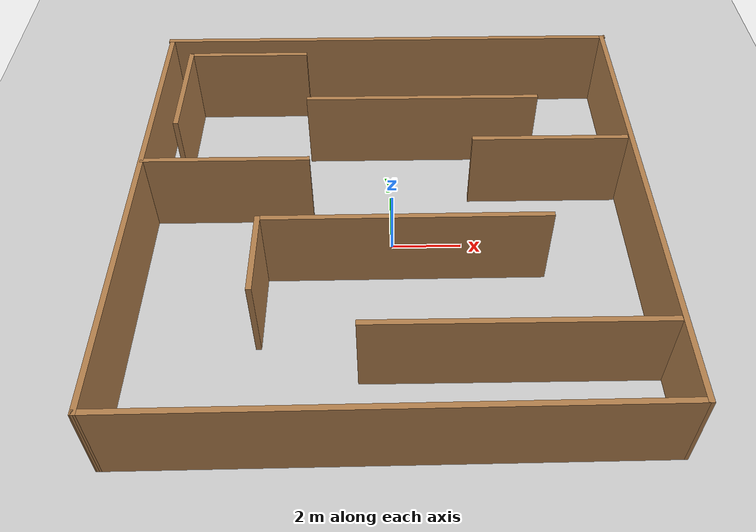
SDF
<sdf version="1.7">
 <world name="default">
  <light name="sun" type="directional">
   <pose>0 0 10 0 -0 0</pose>
   <diffuse>0.8 0.8 0.8 1</diffuse>
   <specular>0.2 0.2 0.2 1</specular>
   <attenuation>
    <range>1000</range>
    <constant>0.9</constant>
    <linear>0.01</linear>
    <quadratic>0.001</quadratic>
   </attenuation>
   <direction>-0.5 0.1 -0.9</direction>
   <spot><inner_angle>0</inner_angle><outer_angle>0</outer_angle><falloff>0</falloff></spot>
  </light>
  <model name="ground_plane">
   <static>1</static>
   <link name="link">
    <collision name="collision">
     <geometry><plane><normal>0 0 1</normal><size>100 100</size></plane></geometry>
     <surface><friction><ode><mu>100</mu><mu2>50</mu2></ode></friction></surface>
    </collision>
    <visual name="visual">
     <cast_shadows>0</cast_shadows>
     <geometry><plane><normal>0 0 1</normal><size>100 100</size></plane></geometry>
     <material>
      <script><uri>file://media/materials/scripts/gazebo.material</uri><name>Gazebo/Grey</name></script>
     </material>
    </visual>
   </link>
  </model>
  <gravity>0 0 -9.8</gravity>
  <magnetic_field>6e-06 2.3e-05 -4.2e-05</magnetic_field>
  <atmosphere type="adiabatic"/>
  <physics type="ode">
   <max_step_size>0.001</max_step_size>
   <real_time_factor>1</real_time_factor>
   <real_time_update_rate>1000</real_time_update_rate>
  </physics>
  <scene><ambient>0.4 0.4 0.4 1</ambient><background>0.7 0.7 0.7 1</background><shadows>1</shadows></scene>
  <audio><device>default</device></audio>
  <spherical_coordinates>
   <surface_model>EARTH_WGS84</surface_model>
   <latitude_deg>0</latitude_deg>
   <longitude_deg>0</longitude_deg>
   <elevation>0</elevation>
   <heading_deg>0</heading_deg>
  </spherical_coordinates>
  <model name="proj2">
   <pose>-0.031125 -0.022629 0 0 -0 0</pose>
   <link name="Wall_0">
    <collision name="Wall_0_Collision">
     <geometry><box><size>14.0306 0.15 2.5</size></box></geometry>
     <pose>0 0 1.25 0 -0 0</pose>
    </collision>
    <visual name="Wall_0_Visual">
     <pose>0 0 1.25 0 -0 0</pose>
     <geometry><box><size>14.0306 0.15 2.5</size></box></geometry>
     <material>
      <script><uri>file://media/materials/scripts/gazebo.material</uri><name>Gazebo/Wood</name></script>
      <ambient>1 1 1 1</ambient>
     </material>
     <meta><layer>0</layer></meta>
    </visual>
    <pose>-7.01292 -0.015459 0 0 -0 -1.5708</pose>
   </link>
   <link name="Wall_11">
    <collision name="Wall_11_Collision">
     <geometry><box><size>4.5 0.15 2.5</size></box></geometry>
     <pose>0 0 1.25 0 -0 0</pose>
    </collision>
    <visual name="Wall_11_Visual">
     <pose>0 0 1.25 0 -0 0</pose>
     <geometry><box><size>4.5 0.15 2.5</size></box></geometry>
     <material>
      <script><uri>file://media/materials/scripts/gazebo.material</uri><name>Gazebo/Wood</name></script>
      <ambient>1 1 1 1</ambient>
     </material>
     <meta><layer>0</layer></meta>
    </visual>
    <pose>4.62264 1.9441 0 0 -0 0</pose>
   </link>
   <link name="Wall_13">
    <collision name="Wall_13_Collision">
     <geometry><box><size>4.75 0.15 2.5</size></box></geometry>
     <pose>0 0 1.25 0 -0 0</pose>
    </collision>
    <visual name="Wall_13_Visual">
     <pose>0 0 1.25 0 -0 0</pose>
     <geometry><box><size>4.75 0.15 2.5</size></box></geometry>
     <material>
      <script><uri>file://media/materials/scripts/gazebo.material</uri><name>Gazebo/Wood</name></script>
      <ambient>1 1 1 1</ambient>
     </material>
     <meta><layer>0</layer></meta>
    </visual>
    <pose>-4.65833 1.15325 0 0 -0 3.14159</pose>
   </link>
   <link name="Wall_15">
    <collision name="Wall_15_Collision">
     <geometry><box><size>2.5 0.15 2.5</size></box></geometry>
     <pose>0 0 1.25 0 -0 0</pose>
    </collision>
    <visual name="Wall_15_Visual">
     <pose>0 0 1.25 0 -0 0</pose>
     <geometry><box><size>2.5 0.15 2.5</size></box></geometry>
     <material>
      <script><uri>file://media/materials/scripts/gazebo.material</uri><name>Gazebo/Wood</name></script>
      <ambient>1 1 1 1</ambient>
     </material>
     <meta><layer>0</layer></meta>
    </visual>
    <pose>-3.54461 -2.33348 0 0 -0 -1.5708</pose>
   </link>
   <link name="Wall_17">
    <collision name="Wall_17_Collision">
     <geometry><box><size>7.93694 0.15 2.5</size></box></geometry>
     <pose>0 0 1.25 0 -0 0</pose>
    </collision>
    <visual name="Wall_17_Visual">
     <pose>0 0 1.25 0 -0 0</pose>
     <geometry><box><size>7.93694 0.15 2.5</size></box></geometry>
     <material>
      <script><uri>file://media/materials/scripts/gazebo.material</uri><name>Gazebo/Wood</name></script>
      <ambient>1 1 1 1</ambient>
     </material>
     <meta><layer>0</layer></meta>
    </visual>
    <pose>0.348829 -1.14327 0 0 -0 -3.13769</pose>
   </link>
   <link name="Wall_19">
    <collision name="Wall_19_Collision">
     <geometry><box><size>7.75 0.15 2.5</size></box></geometry>
     <pose>0 0 1.25 0 -0 0</pose>
    </collision>
    <visual name="Wall_19_Visual">
     <pose>0 0 1.25 0 -0 0</pose>
     <geometry><box><size>7.75 0.15 2.5</size></box></geometry>
     <material>
      <script><uri>file://media/materials/scripts/gazebo.material</uri><name>Gazebo/Wood</name></script>
      <ambient>1 1 1 1</ambient>
     </material>
     <meta><layer>0</layer></meta>
    </visual>
    <pose>2.96255 -4.62608 0 0 -0 0</pose>
   </link>
   <link name="Wall_22">
    <collision name="Wall_22_Collision">
     <geometry><box><size>3.5 0.15 2.5</size></box></geometry>
     <pose>0 0 1.25 0 -0 0</pose>
    </collision>
    <visual name="Wall_22_Visual">
     <pose>0 0 1.25 0 -0 0</pose>
     <geometry><box><size>3.5 0.15 2.5</size></box></geometry>
     <material>
      <script><uri>file://media/materials/scripts/gazebo.material</uri><name>Gazebo/Wood</name></script>
      <ambient>1 1 1 1</ambient>
     </material>
     <meta><layer>0</layer></meta>
    </visual>
    <pose>-6.28669 4.47871 0 0 -0 1.5708</pose>
   </link>
   <link name="Wall_23">
    <collision name="Wall_23_Collision">
     <geometry><box><size>3.75 0.15 2.5</size></box></geometry>
     <pose>0 0 1.25 0 -0 0</pose>
    </collision>
    <visual name="Wall_23_Visual">
     <pose>0 0 1.25 0 -0 0</pose>
     <geometry><box><size>3.75 0.15 2.5</size></box></geometry>
     <material>
      <script><uri>file://media/materials/scripts/gazebo.material</uri><name>Gazebo/Wood</name></script>
      <ambient>1 1 1 1</ambient>
     </material>
     <meta><layer>0</layer></meta>
    </visual>
    <pose>-4.48669 6.15371 0 0 -0 0</pose>
   </link>
   <link name="Wall_3">
    <collision name="Wall_3_Collision">
     <geometry><box><size>14.0307 0.15 2.5</size></box></geometry>
     <pose>0 0 1.25 0 -0 0</pose>
    </collision>
    <visual name="Wall_3_Visual">
     <pose>0 0 1.25 0 -0 0</pose>
     <geometry><box><size>14.0307 0.15 2.5</size></box></geometry>
     <material>
      <script><uri>file://media/materials/scripts/gazebo.material</uri><name>Gazebo/Wood</name></script>
      <ambient>1 1 1 1</ambient>
     </material>
     <meta><layer>0</layer></meta>
    </visual>
    <pose>-0.042297 -6.91004 0 0 -0 0.006574</pose>
   </link>
   <link name="Wall_6">
    <collision name="Wall_6_Collision">
     <geometry><box><size>13.9708 0.15 2.5</size></box></geometry>
     <pose>0 0 1.25 0 -0 0</pose>
    </collision>
    <visual name="Wall_6_Visual">
     <pose>0 0 1.25 0 -0 0</pose>
     <geometry><box><size>13.9708 0.15 2.5</size></box></geometry>
     <material>
      <script><uri>file://media/materials/scripts/gazebo.material</uri><name>Gazebo/Wood</name></script>
      <ambient>1 1 1 1</ambient>
     </material>
     <meta><layer>0</layer></meta>
    </visual>
    <pose>6.95875 0.045376 0 0 -0 1.56199</pose>
   </link>
   <link name="Wall_7">
    <collision name="Wall_7_Collision">
     <geometry><box><size>14.25 0.15 2.5</size></box></geometry>
     <pose>0 0 1.25 0 -0 0</pose>
    </collision>
    <visual name="Wall_7_Visual">
     <pose>0 0 1.25 0 -0 0</pose>
     <geometry><box><size>14.25 0.15 2.5</size></box></geometry>
     <material>
      <script><uri>file://media/materials/scripts/gazebo.material</uri><name>Gazebo/Wood</name></script>
      <ambient>1 1 1 1</ambient>
     </material>
     <meta><layer>0</layer></meta>
    </visual>
    <pose>-0 6.95517 0 0 -0 3.14159</pose>
   </link>
   <link name="Wall_9">
    <collision name="Wall_9_Collision">
     <geometry><box><size>7 0.15 2.5</size></box></geometry>
     <pose>0 0 1.25 0 -0 0</pose>
    </collision>
    <visual name="Wall_9_Visual">
     <pose>0 0 1.25 0 -0 0</pose>
     <geometry><box><size>7 0.15 2.5</size></box></geometry>
     <material>
      <script><uri>file://media/materials/scripts/gazebo.material</uri><name>Gazebo/Wood</name></script>
      <ambient>1 1 1 1</ambient>
     </material>
     <meta><layer>0</layer></meta>
    </visual>
    <pose>1.00584 3.86041 0 0 -0 0</pose>
   </link>
   <static>1</static>
  </model>
 </world>
</sdf>
